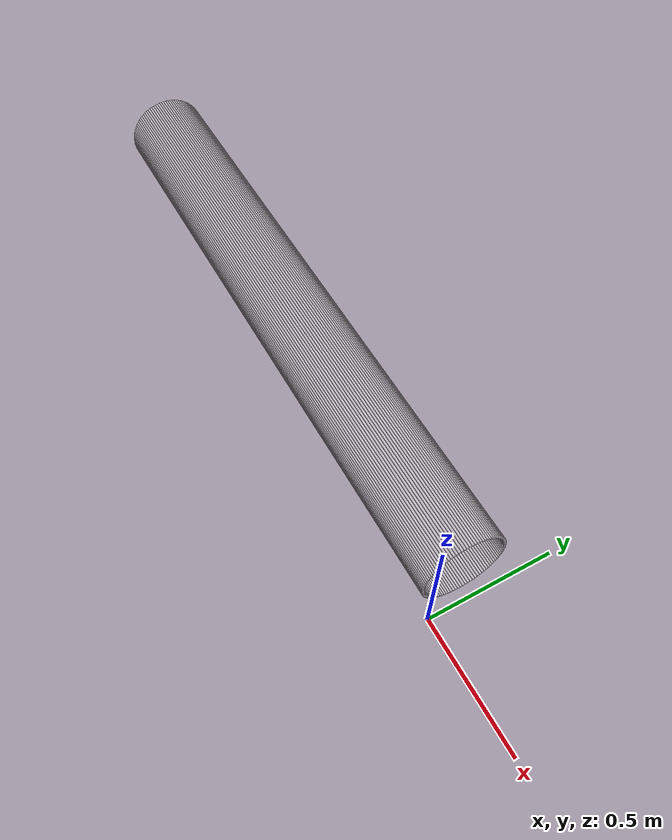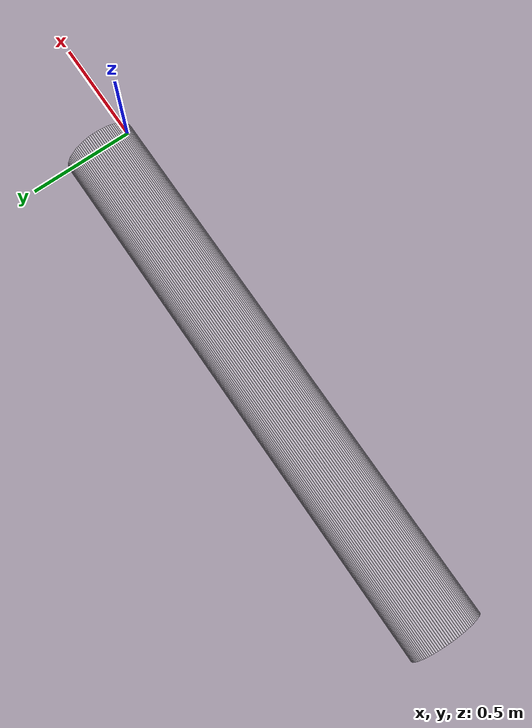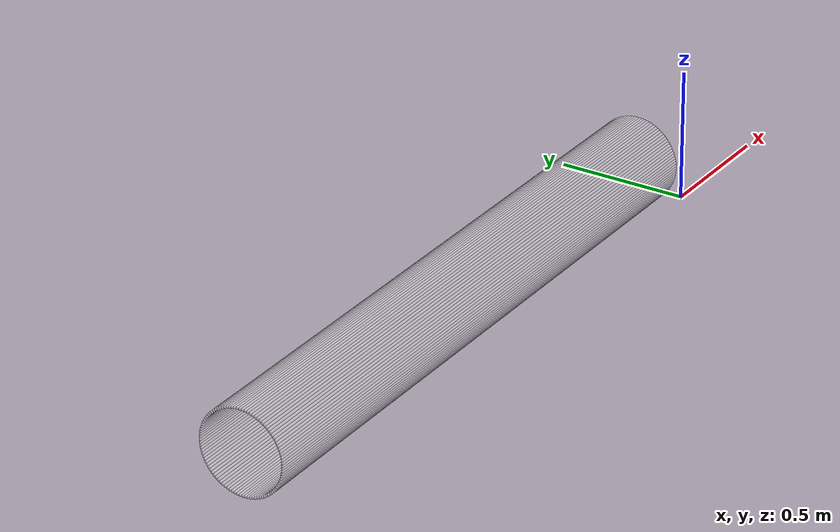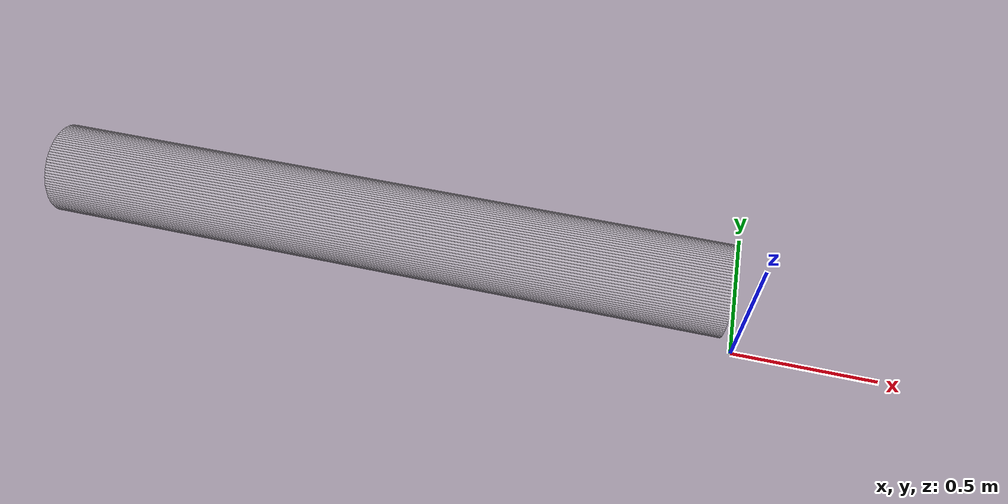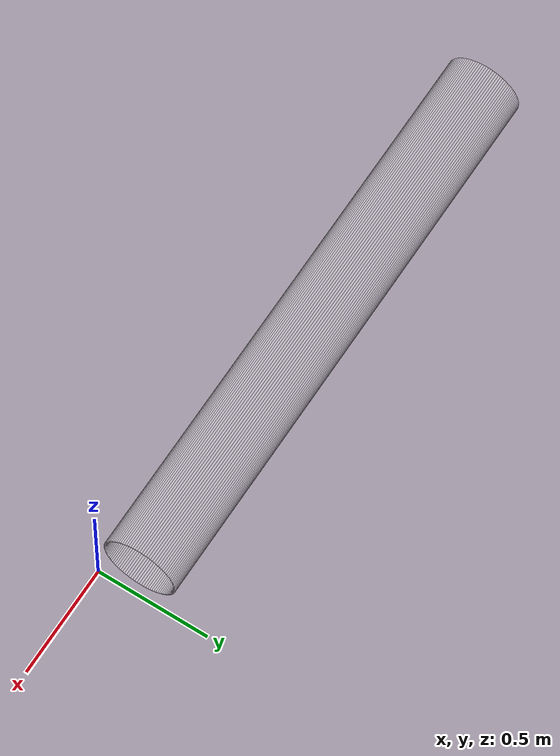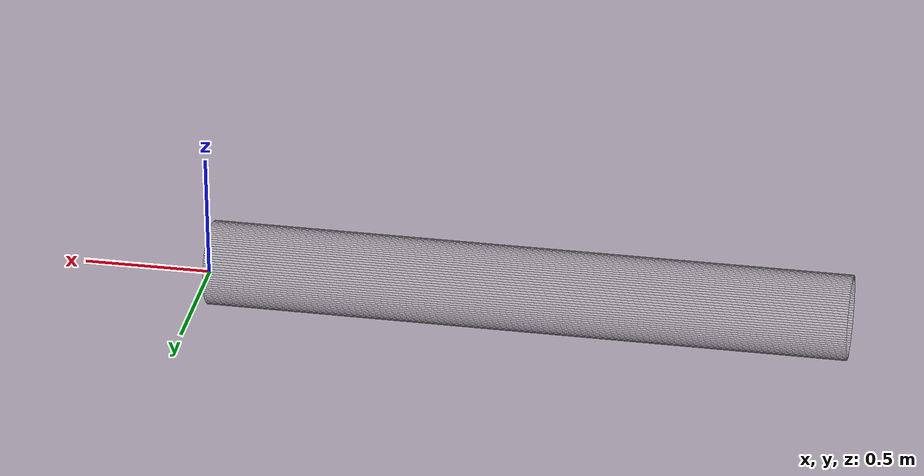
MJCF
<?xml version="1.0" encoding="utf-8"?>
<mujoco>
   <worldbody>
   <body pos="-0.05 0.16 -0.02" euler="0 0 -90">
      <geom euler=" 0 10 0 " fromto="0.16 0 0.16 0.16 -2.5 0.16" rgba="1 1 1 0.35"
            size="0.0050257"
            type="cylinder"/>
      <geom euler=" 0 20 0 " fromto="0.15968 0 0.17005 0.15968 -2.5 0.17005"
            rgba="1 1 1 0.35"
            size="0.0050257"
            type="cylinder"/>
      <geom euler=" 0 30 0 " fromto="0.15874 0 0.18005 0.15874 -2.5 0.18005"
            rgba="1 1 1 0.35"
            size="0.0050257"
            type="cylinder"/>
      <geom euler=" 0 40 0 " fromto="0.15717 0 0.18998 0.15717 -2.5 0.18998"
            rgba="1 1 1 0.35"
            size="0.0050257"
            type="cylinder"/>
      <geom euler=" 0 50 0 " fromto="0.15497 0 0.19979 0.15497 -2.5 0.19979"
            rgba="1 1 1 0.35"
            size="0.0050257"
            type="cylinder"/>
      <geom euler=" 0 60 0 " fromto="0.15217 0 0.20944 0.15217 -2.5 0.20944"
            rgba="1 1 1 0.35"
            size="0.0050257"
            type="cylinder"/>
      <geom euler=" 0 70 0 " fromto="0.14876 0 0.2189 0.14876 -2.5 0.2189"
            rgba="1 1 1 0.35"
            size="0.0050257"
            type="cylinder"/>
      <geom euler=" 0 80 0 " fromto="0.14477 0 0.22812 0.14477 -2.5 0.22812"
            rgba="1 1 1 0.35"
            size="0.0050257"
            type="cylinder"/>
      <geom euler=" 0 90 0 " fromto="0.14021 0 0.23708 0.14021 -2.5 0.23708"
            rgba="1 1 1 0.35"
            size="0.0050257"
            type="cylinder"/>
      <geom euler=" 0 100 0 " fromto="0.13509 0 0.24573 0.13509 -2.5 0.24573"
            rgba="1 1 1 0.35"
            size="0.0050257"
            type="cylinder"/>
      <geom euler=" 0 110 0 " fromto="0.12944 0 0.25405 0.12944 -2.5 0.25405"
            rgba="1 1 1 0.35"
            size="0.0050257"
            type="cylinder"/>
      <geom euler=" 0 120 0 " fromto="0.12328 0 0.26199 0.12328 -2.5 0.26199"
            rgba="1 1 1 0.35"
            size="0.0050257"
            type="cylinder"/>
      <geom euler=" 0 130 0 " fromto="0.11663 0 0.26953 0.11663 -2.5 0.26953"
            rgba="1 1 1 0.35"
            size="0.0050257"
            type="cylinder"/>
      <geom euler=" 0 140 0 " fromto="0.10953 0 0.27663 0.10953 -2.5 0.27663"
            rgba="1 1 1 0.35"
            size="0.0050257"
            type="cylinder"/>
      <geom euler=" 0 150 0 " fromto="0.10199 0 0.28328 0.10199 -2.5 0.28328"
            rgba="1 1 1 0.35"
            size="0.0050257"
            type="cylinder"/>
      <geom euler=" 0 160 0 " fromto="0.094046 0 0.28944 0.094046 -2.5 0.28944"
            rgba="1 1 1 0.35"
            size="0.0050257"
            type="cylinder"/>
      <geom euler=" 0 170 0 " fromto="0.085732 0 0.29509 0.085732 -2.5 0.29509"
            rgba="1 1 1 0.35"
            size="0.0050257"
            type="cylinder"/>
      <geom euler=" 0 180 0 " fromto="0.077081 0 0.30021 0.077081 -2.5 0.30021"
            rgba="1 1 1 0.35"
            size="0.0050257"
            type="cylinder"/>
      <geom euler=" 0 190 0 " fromto="0.068125 0 0.30477 0.068125 -2.5 0.30477"
            rgba="1 1 1 0.35"
            size="0.0050257"
            type="cylinder"/>
      <geom euler=" 0 200 0 " fromto="0.0589 0 0.30876 0.0589 -2.5 0.30876"
            rgba="1 1 1 0.35"
            size="0.0050257"
            type="cylinder"/>
      <geom euler=" 0 210 0 " fromto="0.049443 0 0.31217 0.049443 -2.5 0.31217"
            rgba="1 1 1 0.35"
            size="0.0050257"
            type="cylinder"/>
      <geom euler=" 0 220 0 " fromto="0.03979 0 0.31497 0.03979 -2.5 0.31497"
            rgba="1 1 1 0.35"
            size="0.0050257"
            type="cylinder"/>
      <geom euler=" 0 230 0 " fromto="0.029981 0 0.31717 0.029981 -2.5 0.31717"
            rgba="1 1 1 0.35"
            size="0.0050257"
            type="cylinder"/>
      <geom euler=" 0 240 0 " fromto="0.020053 0 0.31874 0.020053 -2.5 0.31874"
            rgba="1 1 1 0.35"
            size="0.0050257"
            type="cylinder"/>
      <geom euler=" 0 250 0 " fromto="0.010046 0 0.31968 0.010046 -2.5 0.31968"
            rgba="1 1 1 0.35"
            size="0.0050257"
            type="cylinder"/>
      <geom euler=" 0 260 0 " fromto="9.7972e-18 0 0.32 9.7972e-18 -2.5 0.32"
            rgba="1 1 1 0.35"
            size="0.0050257"
            type="cylinder"/>
      <geom euler=" 0 270 0 " fromto="-0.010046 0 0.31968 -0.010046 -2.5 0.31968"
            rgba="1 1 1 0.35"
            size="0.0050257"
            type="cylinder"/>
      <geom euler=" 0 280 0 " fromto="-0.020053 0 0.31874 -0.020053 -2.5 0.31874"
            rgba="1 1 1 0.35"
            size="0.0050257"
            type="cylinder"/>
      <geom euler=" 0 290 0 " fromto="-0.029981 0 0.31717 -0.029981 -2.5 0.31717"
            rgba="1 1 1 0.35"
            size="0.0050257"
            type="cylinder"/>
      <geom euler=" 0 300 0 " fromto="-0.03979 0 0.31497 -0.03979 -2.5 0.31497"
            rgba="1 1 1 0.35"
            size="0.0050257"
            type="cylinder"/>
      <geom euler=" 0 310 0 " fromto="-0.049443 0 0.31217 -0.049443 -2.5 0.31217"
            rgba="1 1 1 0.35"
            size="0.0050257"
            type="cylinder"/>
      <geom euler=" 0 320 0 " fromto="-0.0589 0 0.30876 -0.0589 -2.5 0.30876"
            rgba="1 1 1 0.35"
            size="0.0050257"
            type="cylinder"/>
      <geom euler=" 0 330 0 " fromto="-0.068125 0 0.30477 -0.068125 -2.5 0.30477"
            rgba="1 1 1 0.35"
            size="0.0050257"
            type="cylinder"/>
      <geom euler=" 0 340 0 " fromto="-0.077081 0 0.30021 -0.077081 -2.5 0.30021"
            rgba="1 1 1 0.35"
            size="0.0050257"
            type="cylinder"/>
      <geom euler=" 0 350 0 " fromto="-0.085732 0 0.29509 -0.085732 -2.5 0.29509"
            rgba="1 1 1 0.35"
            size="0.0050257"
            type="cylinder"/>
      <geom euler=" 0 360 0 " fromto="-0.094046 0 0.28944 -0.094046 -2.5 0.28944"
            rgba="1 1 1 0.35"
            size="0.0050257"
            type="cylinder"/>
      <geom euler=" 0 370 0 " fromto="-0.10199 0 0.28328 -0.10199 -2.5 0.28328"
            rgba="1 1 1 0.35"
            size="0.0050257"
            type="cylinder"/>
      <geom euler=" 0 380 0 " fromto="-0.10953 0 0.27663 -0.10953 -2.5 0.27663"
            rgba="1 1 1 0.35"
            size="0.0050257"
            type="cylinder"/>
      <geom euler=" 0 390 0 " fromto="-0.11663 0 0.26953 -0.11663 -2.5 0.26953"
            rgba="1 1 1 0.35"
            size="0.0050257"
            type="cylinder"/>
      <geom euler=" 0 400 0 " fromto="-0.12328 0 0.26199 -0.12328 -2.5 0.26199"
            rgba="1 1 1 0.35"
            size="0.0050257"
            type="cylinder"/>
      <geom euler=" 0 410 0 " fromto="-0.12944 0 0.25405 -0.12944 -2.5 0.25405"
            rgba="1 1 1 0.35"
            size="0.0050257"
            type="cylinder"/>
      <geom euler=" 0 420 0 " fromto="-0.13509 0 0.24573 -0.13509 -2.5 0.24573"
            rgba="1 1 1 0.35"
            size="0.0050257"
            type="cylinder"/>
      <geom euler=" 0 430 0 " fromto="-0.14021 0 0.23708 -0.14021 -2.5 0.23708"
            rgba="1 1 1 0.35"
            size="0.0050257"
            type="cylinder"/>
      <geom euler=" 0 440 0 " fromto="-0.14477 0 0.22812 -0.14477 -2.5 0.22812"
            rgba="1 1 1 0.35"
            size="0.0050257"
            type="cylinder"/>
      <geom euler=" 0 450 0 " fromto="-0.14876 0 0.2189 -0.14876 -2.5 0.2189"
            rgba="1 1 1 0.35"
            size="0.0050257"
            type="cylinder"/>
      <geom euler=" 0 460 0 " fromto="-0.15217 0 0.20944 -0.15217 -2.5 0.20944"
            rgba="1 1 1 0.35"
            size="0.0050257"
            type="cylinder"/>
      <geom euler=" 0 470 0 " fromto="-0.15497 0 0.19979 -0.15497 -2.5 0.19979"
            rgba="1 1 1 0.35"
            size="0.0050257"
            type="cylinder"/>
      <geom euler=" 0 480 0 " fromto="-0.15717 0 0.18998 -0.15717 -2.5 0.18998"
            rgba="1 1 1 0.35"
            size="0.0050257"
            type="cylinder"/>
      <geom euler=" 0 490 0 " fromto="-0.15874 0 0.18005 -0.15874 -2.5 0.18005"
            rgba="1 1 1 0.35"
            size="0.0050257"
            type="cylinder"/>
      <geom euler=" 0 500 0 " fromto="-0.15968 0 0.17005 -0.15968 -2.5 0.17005"
            rgba="1 1 1 0.35"
            size="0.0050257"
            type="cylinder"/>
      <geom euler=" 0 510 0 " fromto="-0.16 0 0.16 -0.16 -2.5 0.16" rgba="1 1 1 0.35"
            size="0.0050257"
            type="cylinder"/>
      <geom euler=" 0 520 0 " fromto="-0.15968 0 0.14995 -0.15968 -2.5 0.14995"
            rgba="1 1 1 0.35"
            size="0.0050257"
            type="cylinder"/>
      <geom euler=" 0 530 0 " fromto="-0.15874 0 0.13995 -0.15874 -2.5 0.13995"
            rgba="1 1 1 0.35"
            size="0.0050257"
            type="cylinder"/>
      <geom euler=" 0 540 0 " fromto="-0.15717 0 0.13002 -0.15717 -2.5 0.13002"
            rgba="1 1 1 0.35"
            size="0.0050257"
            type="cylinder"/>
      <geom euler=" 0 550 0 " fromto="-0.15497 0 0.12021 -0.15497 -2.5 0.12021"
            rgba="1 1 1 0.35"
            size="0.0050257"
            type="cylinder"/>
      <geom euler=" 0 560 0 " fromto="-0.15217 0 0.11056 -0.15217 -2.5 0.11056"
            rgba="1 1 1 0.35"
            size="0.0050257"
            type="cylinder"/>
      <geom euler=" 0 570 0 " fromto="-0.14876 0 0.1011 -0.14876 -2.5 0.1011"
            rgba="1 1 1 0.35"
            size="0.0050257"
            type="cylinder"/>
      <geom euler=" 0 580 0 " fromto="-0.14477 0 0.091875 -0.14477 -2.5 0.091875"
            rgba="1 1 1 0.35"
            size="0.0050257"
            type="cylinder"/>
      <geom euler=" 0 590 0 " fromto="-0.14021 0 0.082919 -0.14021 -2.5 0.082919"
            rgba="1 1 1 0.35"
            size="0.0050257"
            type="cylinder"/>
      <geom euler=" 0 600 0 " fromto="-0.13509 0 0.074268 -0.13509 -2.5 0.074268"
            rgba="1 1 1 0.35"
            size="0.0050257"
            type="cylinder"/>
      <geom euler=" 0 610 0 " fromto="-0.12944 0 0.065954 -0.12944 -2.5 0.065954"
            rgba="1 1 1 0.35"
            size="0.0050257"
            type="cylinder"/>
      <geom euler=" 0 620 0 " fromto="-0.12328 0 0.058012 -0.12328 -2.5 0.058012"
            rgba="1 1 1 0.35"
            size="0.0050257"
            type="cylinder"/>
      <geom euler=" 0 630 0 " fromto="-0.11663 0 0.050472 -0.11663 -2.5 0.050472"
            rgba="1 1 1 0.35"
            size="0.0050257"
            type="cylinder"/>
      <geom euler=" 0 640 0 " fromto="-0.10953 0 0.043365 -0.10953 -2.5 0.043365"
            rgba="1 1 1 0.35"
            size="0.0050257"
            type="cylinder"/>
      <geom euler=" 0 650 0 " fromto="-0.10199 0 0.036718 -0.10199 -2.5 0.036718"
            rgba="1 1 1 0.35"
            size="0.0050257"
            type="cylinder"/>
      <geom euler=" 0 660 0 " fromto="-0.094046 0 0.030557 -0.094046 -2.5 0.030557"
            rgba="1 1 1 0.35"
            size="0.0050257"
            type="cylinder"/>
      <geom euler=" 0 670 0 " fromto="-0.085732 0 0.024908 -0.085732 -2.5 0.024908"
            rgba="1 1 1 0.35"
            size="0.0050257"
            type="cylinder"/>
      <geom euler=" 0 680 0 " fromto="-0.077081 0 0.019791 -0.077081 -2.5 0.019791"
            rgba="1 1 1 0.35"
            size="0.0050257"
            type="cylinder"/>
      <geom euler=" 0 690 0 " fromto="-0.068125 0 0.015228 -0.068125 -2.5 0.015228"
            rgba="1 1 1 0.35"
            size="0.0050257"
            type="cylinder"/>
      <geom euler=" 0 700 0 " fromto="-0.0589 0 0.011236 -0.0589 -2.5 0.011236"
            rgba="1 1 1 0.35"
            size="0.0050257"
            type="cylinder"/>
      <geom euler=" 0 710 0 " fromto="-0.049443 0 0.007831 -0.049443 -2.5 0.007831"
            rgba="1 1 1 0.35"
            size="0.0050257"
            type="cylinder"/>
      <geom euler=" 0 720 0 " fromto="-0.03979 0 0.0050267 -0.03979 -2.5 0.0050267"
            rgba="1 1 1 0.35"
            size="0.0050257"
            type="cylinder"/>
      <geom euler=" 0 730 0 " fromto="-0.029981 0 0.002834 -0.029981 -2.5 0.002834"
            rgba="1 1 1 0.35"
            size="0.0050257"
            type="cylinder"/>
      <geom euler=" 0 740 0 " fromto="-0.020053 0 0.0012616 -0.020053 -2.5 0.0012616"
            rgba="1 1 1 0.35"
            size="0.0050257"
            type="cylinder"/>
      <geom euler=" 0 750 0 " fromto="-0.010046 0 0.00031572 -0.010046 -2.5 0.00031572"
            rgba="1 1 1 0.35"
            size="0.0050257"
            type="cylinder"/>
      <geom euler=" 0 760 0 " fromto="-2.9392e-17 0 0 -2.9392e-17 -2.5 0" rgba="1 1 1 0.35"
            size="0.0050257"
            type="cylinder"/>
      <geom euler=" 0 770 0 " fromto="0.010046 0 0.00031572 0.010046 -2.5 0.00031572"
            rgba="1 1 1 0.35"
            size="0.0050257"
            type="cylinder"/>
      <geom euler=" 0 780 0 " fromto="0.020053 0 0.0012616 0.020053 -2.5 0.0012616"
            rgba="1 1 1 0.35"
            size="0.0050257"
            type="cylinder"/>
      <geom euler=" 0 790 0 " fromto="0.029981 0 0.002834 0.029981 -2.5 0.002834"
            rgba="1 1 1 0.35"
            size="0.0050257"
            type="cylinder"/>
      <geom euler=" 0 800 0 " fromto="0.03979 0 0.0050267 0.03979 -2.5 0.0050267"
            rgba="1 1 1 0.35"
            size="0.0050257"
            type="cylinder"/>
      <geom euler=" 0 810 0 " fromto="0.049443 0 0.007831 0.049443 -2.5 0.007831"
            rgba="1 1 1 0.35"
            size="0.0050257"
            type="cylinder"/>
      <geom euler=" 0 820 0 " fromto="0.0589 0 0.011236 0.0589 -2.5 0.011236"
            rgba="1 1 1 0.35"
            size="0.0050257"
            type="cylinder"/>
      <geom euler=" 0 830 0 " fromto="0.068125 0 0.015228 0.068125 -2.5 0.015228"
            rgba="1 1 1 0.35"
            size="0.0050257"
            type="cylinder"/>
      <geom euler=" 0 840 0 " fromto="0.077081 0 0.019791 0.077081 -2.5 0.019791"
            rgba="1 1 1 0.35"
            size="0.0050257"
            type="cylinder"/>
      <geom euler=" 0 850 0 " fromto="0.085732 0 0.024908 0.085732 -2.5 0.024908"
            rgba="1 1 1 0.35"
            size="0.0050257"
            type="cylinder"/>
      <geom euler=" 0 860 0 " fromto="0.094046 0 0.030557 0.094046 -2.5 0.030557"
            rgba="1 1 1 0.35"
            size="0.0050257"
            type="cylinder"/>
      <geom euler=" 0 870 0 " fromto="0.10199 0 0.036718 0.10199 -2.5 0.036718"
            rgba="1 1 1 0.35"
            size="0.0050257"
            type="cylinder"/>
      <geom euler=" 0 880 0 " fromto="0.10953 0 0.043365 0.10953 -2.5 0.043365"
            rgba="1 1 1 0.35"
            size="0.0050257"
            type="cylinder"/>
      <geom euler=" 0 890 0 " fromto="0.11663 0 0.050472 0.11663 -2.5 0.050472"
            rgba="1 1 1 0.35"
            size="0.0050257"
            type="cylinder"/>
      <geom euler=" 0 900 0 " fromto="0.12328 0 0.058012 0.12328 -2.5 0.058012"
            rgba="1 1 1 0.35"
            size="0.0050257"
            type="cylinder"/>
      <geom euler=" 0 910 0 " fromto="0.12944 0 0.065954 0.12944 -2.5 0.065954"
            rgba="1 1 1 0.35"
            size="0.0050257"
            type="cylinder"/>
      <geom euler=" 0 920 0 " fromto="0.13509 0 0.074268 0.13509 -2.5 0.074268"
            rgba="1 1 1 0.35"
            size="0.0050257"
            type="cylinder"/>
      <geom euler=" 0 930 0 " fromto="0.14021 0 0.082919 0.14021 -2.5 0.082919"
            rgba="1 1 1 0.35"
            size="0.0050257"
            type="cylinder"/>
      <geom euler=" 0 940 0 " fromto="0.14477 0 0.091875 0.14477 -2.5 0.091875"
            rgba="1 1 1 0.35"
            size="0.0050257"
            type="cylinder"/>
      <geom euler=" 0 950 0 " fromto="0.14876 0 0.1011 0.14876 -2.5 0.1011"
            rgba="1 1 1 0.35"
            size="0.0050257"
            type="cylinder"/>
      <geom euler=" 0 960 0 " fromto="0.15217 0 0.11056 0.15217 -2.5 0.11056"
            rgba="1 1 1 0.35"
            size="0.0050257"
            type="cylinder"/>
      <geom euler=" 0 970 0 " fromto="0.15497 0 0.12021 0.15497 -2.5 0.12021"
            rgba="1 1 1 0.35"
            size="0.0050257"
            type="cylinder"/>
      <geom euler=" 0 980 0 " fromto="0.15717 0 0.13002 0.15717 -2.5 0.13002"
            rgba="1 1 1 0.35"
            size="0.0050257"
            type="cylinder"/>
      <geom euler=" 0 990 0 " fromto="0.15874 0 0.13995 0.15874 -2.5 0.13995"
            rgba="1 1 1 0.35"
            size="0.0050257"
            type="cylinder"/>
      <geom euler=" 0 1000 0 " fromto="0.15968 0 0.14995 0.15968 -2.5 0.14995"
            rgba="1 1 1 0.35"
            size="0.0050257"
            type="cylinder"/>
   </body>
   </worldbody>
</mujoco>
